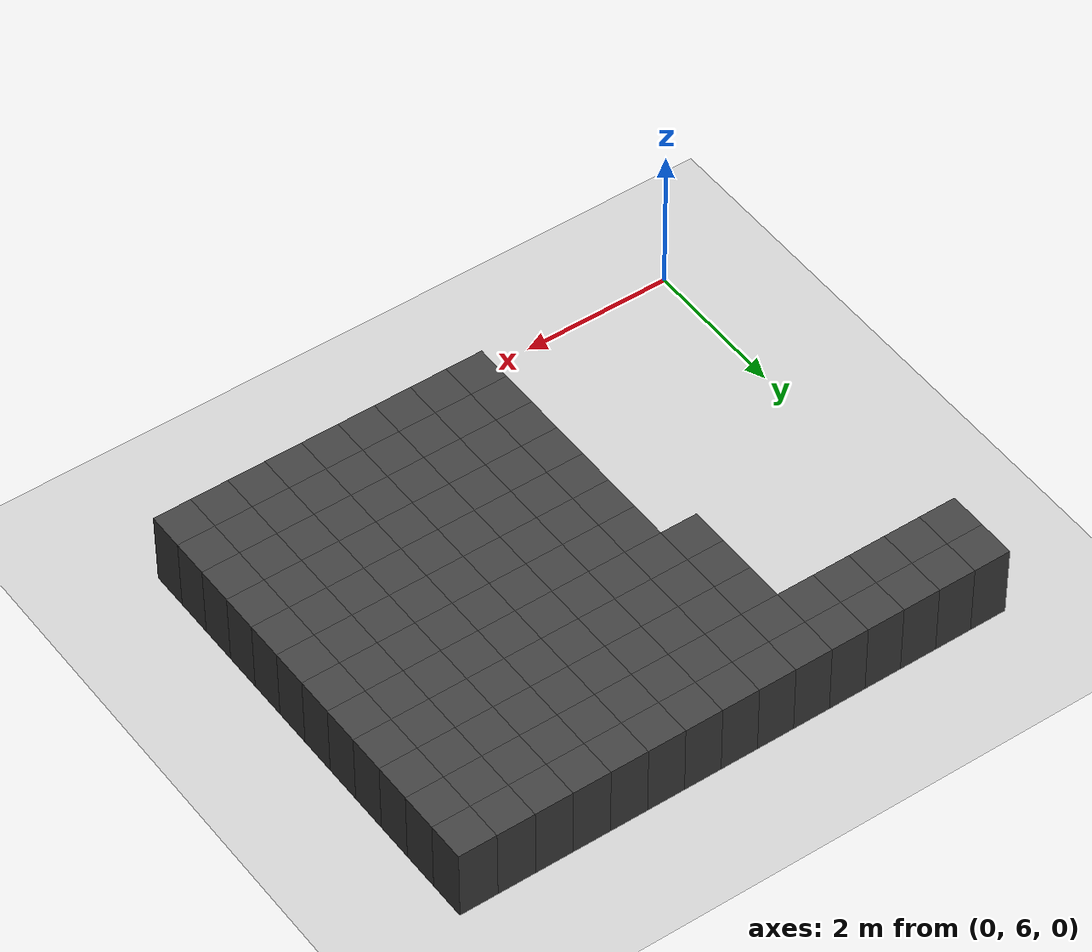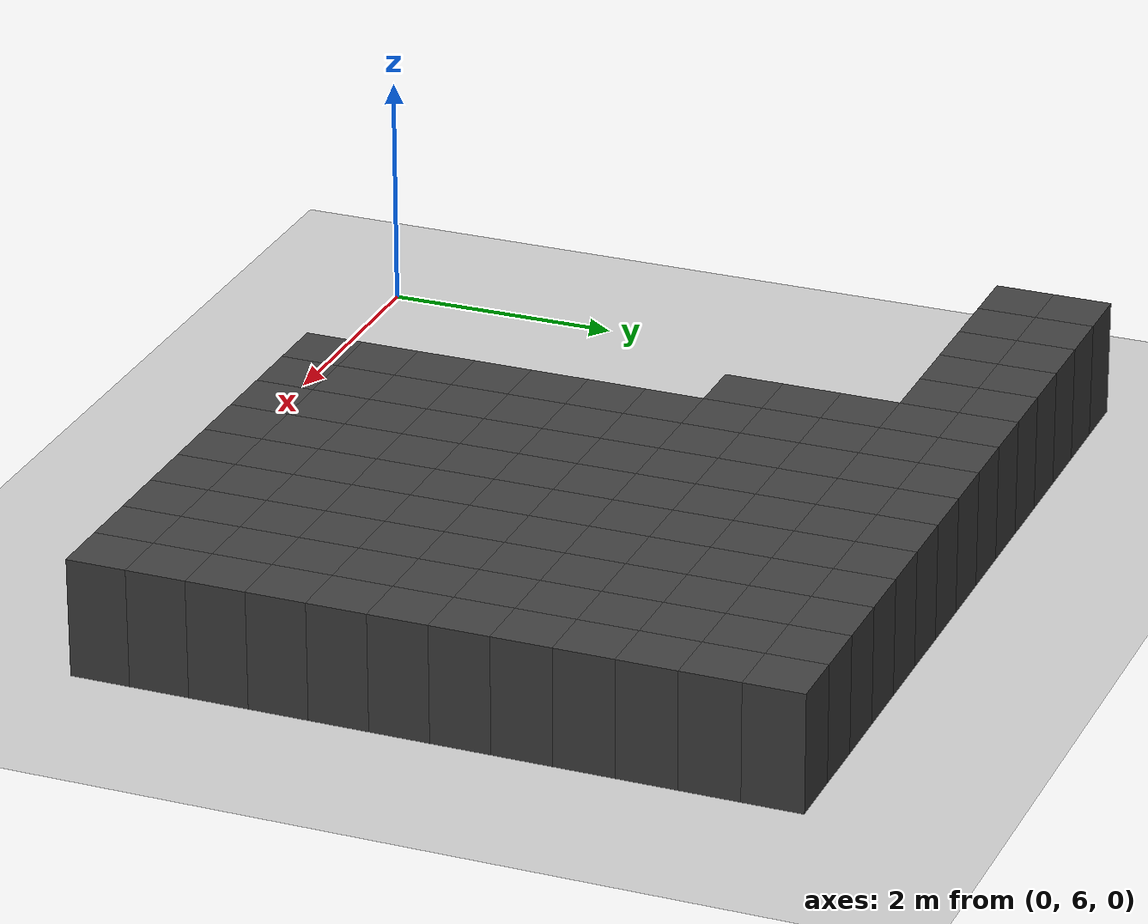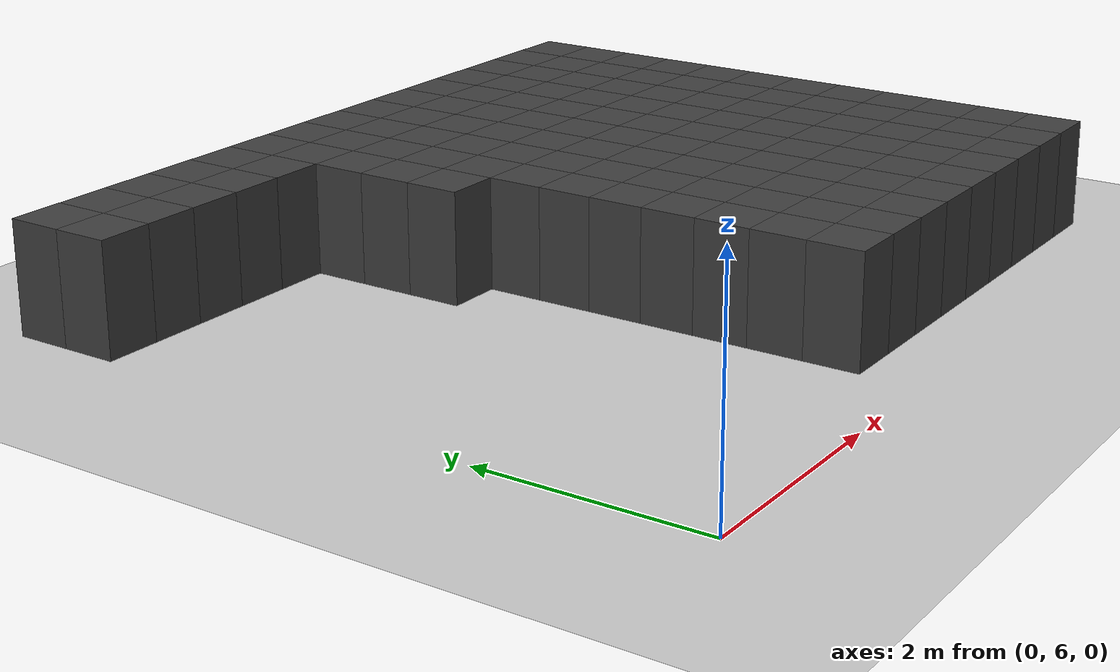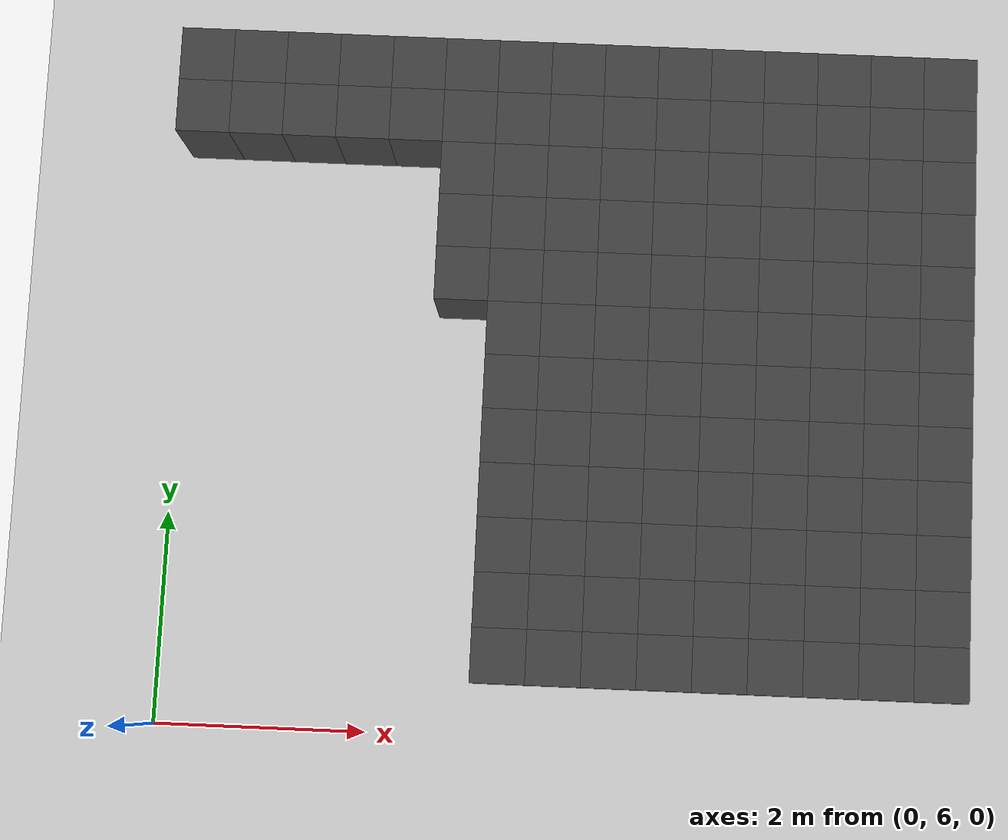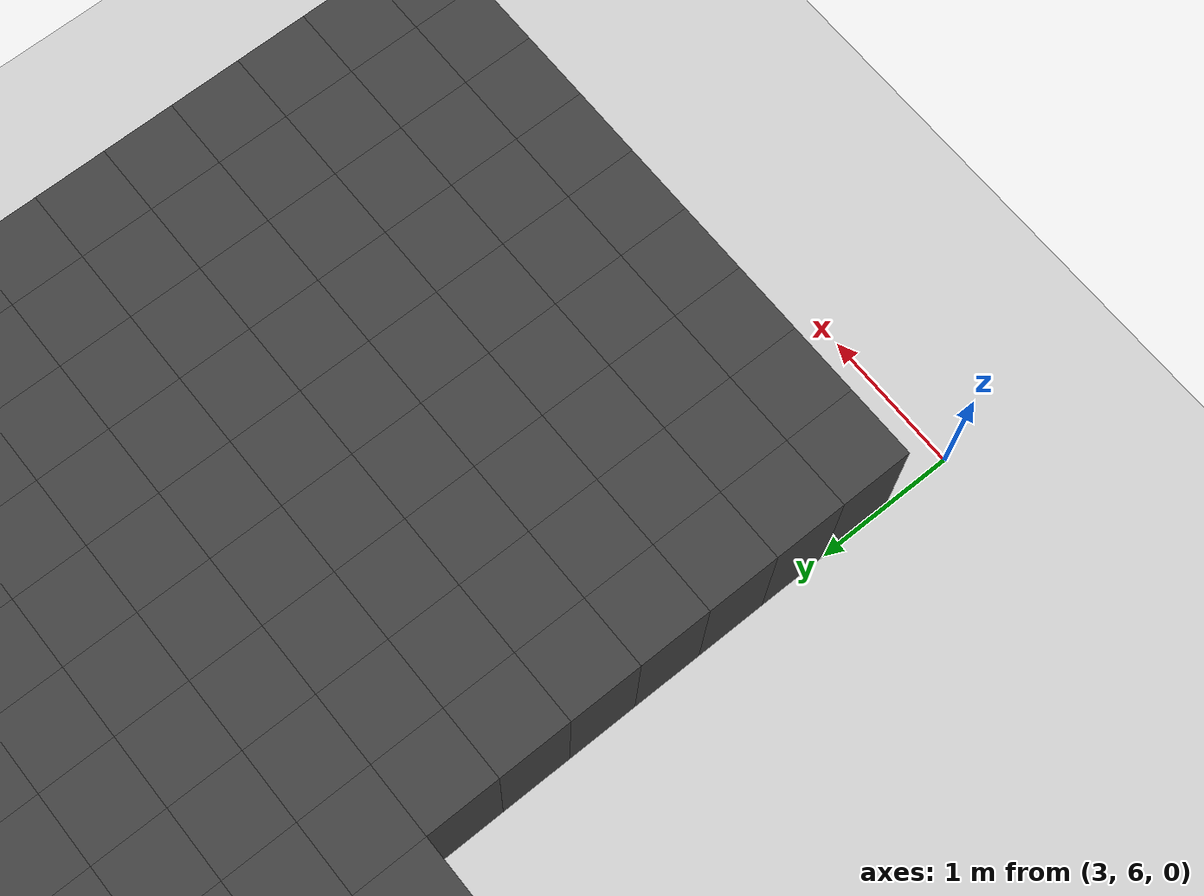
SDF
<sdf version="1.7">
 <world name="map_14888">
  <model name="ground_plane">
   <static>true</static>
   <link name="link">
    <collision name="collision">
     <geometry><plane><normal>0 0 1</normal><size>200 200</size></plane></geometry>
    </collision>
    <visual name="visual">
     <geometry><plane><normal>0 0 1</normal><size>200 200</size></plane></geometry>
     <material><ambient>0.8 0.8 0.8 1</ambient><diffuse>0.8 0.8 0.8 1</diffuse></material>
    </visual>
   </link>
  </model>
  <model name="maze_environment">
   <static>true</static>
   <link name="wall_25">
    <pose>0.250 12.250 0.500 0 0 0</pose>
    <collision name="col"><geometry><box><size>0.5 0.5 1.0</size></box></geometry></collision>
    <visual name="vis">
     <geometry><box><size>0.5 0.5 1.0</size></box></geometry>
     <material><ambient>0.15 0.15 0.15 1</ambient><diffuse>0.25 0.25 0.25 1</diffuse></material>
    </visual>
   </link>
   <link name="wall_26">
    <pose>0.750 12.250 0.500 0 0 0</pose>
    <collision name="col"><geometry><box><size>0.5 0.5 1.0</size></box></geometry></collision>
    <visual name="vis">
     <geometry><box><size>0.5 0.5 1.0</size></box></geometry>
     <material><ambient>0.15 0.15 0.15 1</ambient><diffuse>0.25 0.25 0.25 1</diffuse></material>
    </visual>
   </link>
   <link name="wall_27">
    <pose>1.250 12.250 0.500 0 0 0</pose>
    <collision name="col"><geometry><box><size>0.5 0.5 1.0</size></box></geometry></collision>
    <visual name="vis">
     <geometry><box><size>0.5 0.5 1.0</size></box></geometry>
     <material><ambient>0.15 0.15 0.15 1</ambient><diffuse>0.25 0.25 0.25 1</diffuse></material>
    </visual>
   </link>
   <link name="wall_28">
    <pose>1.750 12.250 0.500 0 0 0</pose>
    <collision name="col"><geometry><box><size>0.5 0.5 1.0</size></box></geometry></collision>
    <visual name="vis">
     <geometry><box><size>0.5 0.5 1.0</size></box></geometry>
     <material><ambient>0.15 0.15 0.15 1</ambient><diffuse>0.25 0.25 0.25 1</diffuse></material>
    </visual>
   </link>
   <link name="wall_29">
    <pose>2.250 12.250 0.500 0 0 0</pose>
    <collision name="col"><geometry><box><size>0.5 0.5 1.0</size></box></geometry></collision>
    <visual name="vis">
     <geometry><box><size>0.5 0.5 1.0</size></box></geometry>
     <material><ambient>0.15 0.15 0.15 1</ambient><diffuse>0.25 0.25 0.25 1</diffuse></material>
    </visual>
   </link>
   <link name="wall_30">
    <pose>2.750 12.250 0.500 0 0 0</pose>
    <collision name="col"><geometry><box><size>0.5 0.5 1.0</size></box></geometry></collision>
    <visual name="vis">
     <geometry><box><size>0.5 0.5 1.0</size></box></geometry>
     <material><ambient>0.15 0.15 0.15 1</ambient><diffuse>0.25 0.25 0.25 1</diffuse></material>
    </visual>
   </link>
   <link name="wall_31">
    <pose>3.250 12.250 0.500 0 0 0</pose>
    <collision name="col"><geometry><box><size>0.5 0.5 1.0</size></box></geometry></collision>
    <visual name="vis">
     <geometry><box><size>0.5 0.5 1.0</size></box></geometry>
     <material><ambient>0.15 0.15 0.15 1</ambient><diffuse>0.25 0.25 0.25 1</diffuse></material>
    </visual>
   </link>
   <link name="wall_32">
    <pose>3.750 12.250 0.500 0 0 0</pose>
    <collision name="col"><geometry><box><size>0.5 0.5 1.0</size></box></geometry></collision>
    <visual name="vis">
     <geometry><box><size>0.5 0.5 1.0</size></box></geometry>
     <material><ambient>0.15 0.15 0.15 1</ambient><diffuse>0.25 0.25 0.25 1</diffuse></material>
    </visual>
   </link>
   <link name="wall_33">
    <pose>4.250 12.250 0.500 0 0 0</pose>
    <collision name="col"><geometry><box><size>0.5 0.5 1.0</size></box></geometry></collision>
    <visual name="vis">
     <geometry><box><size>0.5 0.5 1.0</size></box></geometry>
     <material><ambient>0.15 0.15 0.15 1</ambient><diffuse>0.25 0.25 0.25 1</diffuse></material>
    </visual>
   </link>
   <link name="wall_34">
    <pose>4.750 12.250 0.500 0 0 0</pose>
    <collision name="col"><geometry><box><size>0.5 0.5 1.0</size></box></geometry></collision>
    <visual name="vis">
     <geometry><box><size>0.5 0.5 1.0</size></box></geometry>
     <material><ambient>0.15 0.15 0.15 1</ambient><diffuse>0.25 0.25 0.25 1</diffuse></material>
    </visual>
   </link>
   <link name="wall_35">
    <pose>5.250 12.250 0.500 0 0 0</pose>
    <collision name="col"><geometry><box><size>0.5 0.5 1.0</size></box></geometry></collision>
    <visual name="vis">
     <geometry><box><size>0.5 0.5 1.0</size></box></geometry>
     <material><ambient>0.15 0.15 0.15 1</ambient><diffuse>0.25 0.25 0.25 1</diffuse></material>
    </visual>
   </link>
   <link name="wall_36">
    <pose>5.750 12.250 0.500 0 0 0</pose>
    <collision name="col"><geometry><box><size>0.5 0.5 1.0</size></box></geometry></collision>
    <visual name="vis">
     <geometry><box><size>0.5 0.5 1.0</size></box></geometry>
     <material><ambient>0.15 0.15 0.15 1</ambient><diffuse>0.25 0.25 0.25 1</diffuse></material>
    </visual>
   </link>
   <link name="wall_37">
    <pose>6.250 12.250 0.500 0 0 0</pose>
    <collision name="col"><geometry><box><size>0.5 0.5 1.0</size></box></geometry></collision>
    <visual name="vis">
     <geometry><box><size>0.5 0.5 1.0</size></box></geometry>
     <material><ambient>0.15 0.15 0.15 1</ambient><diffuse>0.25 0.25 0.25 1</diffuse></material>
    </visual>
   </link>
   <link name="wall_38">
    <pose>6.750 12.250 0.500 0 0 0</pose>
    <collision name="col"><geometry><box><size>0.5 0.5 1.0</size></box></geometry></collision>
    <visual name="vis">
     <geometry><box><size>0.5 0.5 1.0</size></box></geometry>
     <material><ambient>0.15 0.15 0.15 1</ambient><diffuse>0.25 0.25 0.25 1</diffuse></material>
    </visual>
   </link>
   <link name="wall_39">
    <pose>7.250 12.250 0.500 0 0 0</pose>
    <collision name="col"><geometry><box><size>0.5 0.5 1.0</size></box></geometry></collision>
    <visual name="vis">
     <geometry><box><size>0.5 0.5 1.0</size></box></geometry>
     <material><ambient>0.15 0.15 0.15 1</ambient><diffuse>0.25 0.25 0.25 1</diffuse></material>
    </visual>
   </link>
   <link name="wall_72">
    <pose>0.250 11.750 0.500 0 0 0</pose>
    <collision name="col"><geometry><box><size>0.5 0.5 1.0</size></box></geometry></collision>
    <visual name="vis">
     <geometry><box><size>0.5 0.5 1.0</size></box></geometry>
     <material><ambient>0.15 0.15 0.15 1</ambient><diffuse>0.25 0.25 0.25 1</diffuse></material>
    </visual>
   </link>
   <link name="wall_73">
    <pose>0.750 11.750 0.500 0 0 0</pose>
    <collision name="col"><geometry><box><size>0.5 0.5 1.0</size></box></geometry></collision>
    <visual name="vis">
     <geometry><box><size>0.5 0.5 1.0</size></box></geometry>
     <material><ambient>0.15 0.15 0.15 1</ambient><diffuse>0.25 0.25 0.25 1</diffuse></material>
    </visual>
   </link>
   <link name="wall_74">
    <pose>1.250 11.750 0.500 0 0 0</pose>
    <collision name="col"><geometry><box><size>0.5 0.5 1.0</size></box></geometry></collision>
    <visual name="vis">
     <geometry><box><size>0.5 0.5 1.0</size></box></geometry>
     <material><ambient>0.15 0.15 0.15 1</ambient><diffuse>0.25 0.25 0.25 1</diffuse></material>
    </visual>
   </link>
   <link name="wall_75">
    <pose>1.750 11.750 0.500 0 0 0</pose>
    <collision name="col"><geometry><box><size>0.5 0.5 1.0</size></box></geometry></collision>
    <visual name="vis">
     <geometry><box><size>0.5 0.5 1.0</size></box></geometry>
     <material><ambient>0.15 0.15 0.15 1</ambient><diffuse>0.25 0.25 0.25 1</diffuse></material>
    </visual>
   </link>
   <link name="wall_76">
    <pose>2.250 11.750 0.500 0 0 0</pose>
    <collision name="col"><geometry><box><size>0.5 0.5 1.0</size></box></geometry></collision>
    <visual name="vis">
     <geometry><box><size>0.5 0.5 1.0</size></box></geometry>
     <material><ambient>0.15 0.15 0.15 1</ambient><diffuse>0.25 0.25 0.25 1</diffuse></material>
    </visual>
   </link>
   <link name="wall_77">
    <pose>2.750 11.750 0.500 0 0 0</pose>
    <collision name="col"><geometry><box><size>0.5 0.5 1.0</size></box></geometry></collision>
    <visual name="vis">
     <geometry><box><size>0.5 0.5 1.0</size></box></geometry>
     <material><ambient>0.15 0.15 0.15 1</ambient><diffuse>0.25 0.25 0.25 1</diffuse></material>
    </visual>
   </link>
   <link name="wall_78">
    <pose>3.250 11.750 0.500 0 0 0</pose>
    <collision name="col"><geometry><box><size>0.5 0.5 1.0</size></box></geometry></collision>
    <visual name="vis">
     <geometry><box><size>0.5 0.5 1.0</size></box></geometry>
     <material><ambient>0.15 0.15 0.15 1</ambient><diffuse>0.25 0.25 0.25 1</diffuse></material>
    </visual>
   </link>
   <link name="wall_79">
    <pose>3.750 11.750 0.500 0 0 0</pose>
    <collision name="col"><geometry><box><size>0.5 0.5 1.0</size></box></geometry></collision>
    <visual name="vis">
     <geometry><box><size>0.5 0.5 1.0</size></box></geometry>
     <material><ambient>0.15 0.15 0.15 1</ambient><diffuse>0.25 0.25 0.25 1</diffuse></material>
    </visual>
   </link>
   <link name="wall_80">
    <pose>4.250 11.750 0.500 0 0 0</pose>
    <collision name="col"><geometry><box><size>0.5 0.5 1.0</size></box></geometry></collision>
    <visual name="vis">
     <geometry><box><size>0.5 0.5 1.0</size></box></geometry>
     <material><ambient>0.15 0.15 0.15 1</ambient><diffuse>0.25 0.25 0.25 1</diffuse></material>
    </visual>
   </link>
   <link name="wall_81">
    <pose>4.750 11.750 0.500 0 0 0</pose>
    <collision name="col"><geometry><box><size>0.5 0.5 1.0</size></box></geometry></collision>
    <visual name="vis">
     <geometry><box><size>0.5 0.5 1.0</size></box></geometry>
     <material><ambient>0.15 0.15 0.15 1</ambient><diffuse>0.25 0.25 0.25 1</diffuse></material>
    </visual>
   </link>
   <link name="wall_82">
    <pose>5.250 11.750 0.500 0 0 0</pose>
    <collision name="col"><geometry><box><size>0.5 0.5 1.0</size></box></geometry></collision>
    <visual name="vis">
     <geometry><box><size>0.5 0.5 1.0</size></box></geometry>
     <material><ambient>0.15 0.15 0.15 1</ambient><diffuse>0.25 0.25 0.25 1</diffuse></material>
    </visual>
   </link>
   <link name="wall_83">
    <pose>5.750 11.750 0.500 0 0 0</pose>
    <collision name="col"><geometry><box><size>0.5 0.5 1.0</size></box></geometry></collision>
    <visual name="vis">
     <geometry><box><size>0.5 0.5 1.0</size></box></geometry>
     <material><ambient>0.15 0.15 0.15 1</ambient><diffuse>0.25 0.25 0.25 1</diffuse></material>
    </visual>
   </link>
   <link name="wall_84">
    <pose>6.250 11.750 0.500 0 0 0</pose>
    <collision name="col"><geometry><box><size>0.5 0.5 1.0</size></box></geometry></collision>
    <visual name="vis">
     <geometry><box><size>0.5 0.5 1.0</size></box></geometry>
     <material><ambient>0.15 0.15 0.15 1</ambient><diffuse>0.25 0.25 0.25 1</diffuse></material>
    </visual>
   </link>
   <link name="wall_85">
    <pose>6.750 11.750 0.500 0 0 0</pose>
    <collision name="col"><geometry><box><size>0.5 0.5 1.0</size></box></geometry></collision>
    <visual name="vis">
     <geometry><box><size>0.5 0.5 1.0</size></box></geometry>
     <material><ambient>0.15 0.15 0.15 1</ambient><diffuse>0.25 0.25 0.25 1</diffuse></material>
    </visual>
   </link>
   <link name="wall_86">
    <pose>7.250 11.750 0.500 0 0 0</pose>
    <collision name="col"><geometry><box><size>0.5 0.5 1.0</size></box></geometry></collision>
    <visual name="vis">
     <geometry><box><size>0.5 0.5 1.0</size></box></geometry>
     <material><ambient>0.15 0.15 0.15 1</ambient><diffuse>0.25 0.25 0.25 1</diffuse></material>
    </visual>
   </link>
   <link name="wall_118">
    <pose>2.750 11.250 0.500 0 0 0</pose>
    <collision name="col"><geometry><box><size>0.5 0.5 1.0</size></box></geometry></collision>
    <visual name="vis">
     <geometry><box><size>0.5 0.5 1.0</size></box></geometry>
     <material><ambient>0.15 0.15 0.15 1</ambient><diffuse>0.25 0.25 0.25 1</diffuse></material>
    </visual>
   </link>
   <link name="wall_119">
    <pose>3.250 11.250 0.500 0 0 0</pose>
    <collision name="col"><geometry><box><size>0.5 0.5 1.0</size></box></geometry></collision>
    <visual name="vis">
     <geometry><box><size>0.5 0.5 1.0</size></box></geometry>
     <material><ambient>0.15 0.15 0.15 1</ambient><diffuse>0.25 0.25 0.25 1</diffuse></material>
    </visual>
   </link>
   <link name="wall_120">
    <pose>3.750 11.250 0.500 0 0 0</pose>
    <collision name="col"><geometry><box><size>0.5 0.5 1.0</size></box></geometry></collision>
    <visual name="vis">
     <geometry><box><size>0.5 0.5 1.0</size></box></geometry>
     <material><ambient>0.15 0.15 0.15 1</ambient><diffuse>0.25 0.25 0.25 1</diffuse></material>
    </visual>
   </link>
   <link name="wall_121">
    <pose>4.250 11.250 0.500 0 0 0</pose>
    <collision name="col"><geometry><box><size>0.5 0.5 1.0</size></box></geometry></collision>
    <visual name="vis">
     <geometry><box><size>0.5 0.5 1.0</size></box></geometry>
     <material><ambient>0.15 0.15 0.15 1</ambient><diffuse>0.25 0.25 0.25 1</diffuse></material>
    </visual>
   </link>
   <link name="wall_122">
    <pose>4.750 11.250 0.500 0 0 0</pose>
    <collision name="col"><geometry><box><size>0.5 0.5 1.0</size></box></geometry></collision>
    <visual name="vis">
     <geometry><box><size>0.5 0.5 1.0</size></box></geometry>
     <material><ambient>0.15 0.15 0.15 1</ambient><diffuse>0.25 0.25 0.25 1</diffuse></material>
    </visual>
   </link>
   <link name="wall_123">
    <pose>5.250 11.250 0.500 0 0 0</pose>
    <collision name="col"><geometry><box><size>0.5 0.5 1.0</size></box></geometry></collision>
    <visual name="vis">
     <geometry><box><size>0.5 0.5 1.0</size></box></geometry>
     <material><ambient>0.15 0.15 0.15 1</ambient><diffuse>0.25 0.25 0.25 1</diffuse></material>
    </visual>
   </link>
   <link name="wall_124">
    <pose>5.750 11.250 0.500 0 0 0</pose>
    <collision name="col"><geometry><box><size>0.5 0.5 1.0</size></box></geometry></collision>
    <visual name="vis">
     <geometry><box><size>0.5 0.5 1.0</size></box></geometry>
     <material><ambient>0.15 0.15 0.15 1</ambient><diffuse>0.25 0.25 0.25 1</diffuse></material>
    </visual>
   </link>
   <link name="wall_125">
    <pose>6.250 11.250 0.500 0 0 0</pose>
    <collision name="col"><geometry><box><size>0.5 0.5 1.0</size></box></geometry></collision>
    <visual name="vis">
     <geometry><box><size>0.5 0.5 1.0</size></box></geometry>
     <material><ambient>0.15 0.15 0.15 1</ambient><diffuse>0.25 0.25 0.25 1</diffuse></material>
    </visual>
   </link>
   <link name="wall_126">
    <pose>6.750 11.250 0.500 0 0 0</pose>
    <collision name="col"><geometry><box><size>0.5 0.5 1.0</size></box></geometry></collision>
    <visual name="vis">
     <geometry><box><size>0.5 0.5 1.0</size></box></geometry>
     <material><ambient>0.15 0.15 0.15 1</ambient><diffuse>0.25 0.25 0.25 1</diffuse></material>
    </visual>
   </link>
   <link name="wall_127">
    <pose>7.250 11.250 0.500 0 0 0</pose>
    <collision name="col"><geometry><box><size>0.5 0.5 1.0</size></box></geometry></collision>
    <visual name="vis">
     <geometry><box><size>0.5 0.5 1.0</size></box></geometry>
     <material><ambient>0.15 0.15 0.15 1</ambient><diffuse>0.25 0.25 0.25 1</diffuse></material>
    </visual>
   </link>
   <link name="wall_159">
    <pose>2.750 10.750 0.500 0 0 0</pose>
    <collision name="col"><geometry><box><size>0.5 0.5 1.0</size></box></geometry></collision>
    <visual name="vis">
     <geometry><box><size>0.5 0.5 1.0</size></box></geometry>
     <material><ambient>0.15 0.15 0.15 1</ambient><diffuse>0.25 0.25 0.25 1</diffuse></material>
    </visual>
   </link>
   <link name="wall_160">
    <pose>3.250 10.750 0.500 0 0 0</pose>
    <collision name="col"><geometry><box><size>0.5 0.5 1.0</size></box></geometry></collision>
    <visual name="vis">
     <geometry><box><size>0.5 0.5 1.0</size></box></geometry>
     <material><ambient>0.15 0.15 0.15 1</ambient><diffuse>0.25 0.25 0.25 1</diffuse></material>
    </visual>
   </link>
   <link name="wall_161">
    <pose>3.750 10.750 0.500 0 0 0</pose>
    <collision name="col"><geometry><box><size>0.5 0.5 1.0</size></box></geometry></collision>
    <visual name="vis">
     <geometry><box><size>0.5 0.5 1.0</size></box></geometry>
     <material><ambient>0.15 0.15 0.15 1</ambient><diffuse>0.25 0.25 0.25 1</diffuse></material>
    </visual>
   </link>
   <link name="wall_162">
    <pose>4.250 10.750 0.500 0 0 0</pose>
    <collision name="col"><geometry><box><size>0.5 0.5 1.0</size></box></geometry></collision>
    <visual name="vis">
     <geometry><box><size>0.5 0.5 1.0</size></box></geometry>
     <material><ambient>0.15 0.15 0.15 1</ambient><diffuse>0.25 0.25 0.25 1</diffuse></material>
    </visual>
   </link>
   <link name="wall_163">
    <pose>4.750 10.750 0.500 0 0 0</pose>
    <collision name="col"><geometry><box><size>0.5 0.5 1.0</size></box></geometry></collision>
    <visual name="vis">
     <geometry><box><size>0.5 0.5 1.0</size></box></geometry>
     <material><ambient>0.15 0.15 0.15 1</ambient><diffuse>0.25 0.25 0.25 1</diffuse></material>
    </visual>
   </link>
   <link name="wall_164">
    <pose>5.250 10.750 0.500 0 0 0</pose>
    <collision name="col"><geometry><box><size>0.5 0.5 1.0</size></box></geometry></collision>
    <visual name="vis">
     <geometry><box><size>0.5 0.5 1.0</size></box></geometry>
     <material><ambient>0.15 0.15 0.15 1</ambient><diffuse>0.25 0.25 0.25 1</diffuse></material>
    </visual>
   </link>
   <link name="wall_165">
    <pose>5.750 10.750 0.500 0 0 0</pose>
    <collision name="col"><geometry><box><size>0.5 0.5 1.0</size></box></geometry></collision>
    <visual name="vis">
     <geometry><box><size>0.5 0.5 1.0</size></box></geometry>
     <material><ambient>0.15 0.15 0.15 1</ambient><diffuse>0.25 0.25 0.25 1</diffuse></material>
    </visual>
   </link>
   <link name="wall_166">
    <pose>6.250 10.750 0.500 0 0 0</pose>
    <collision name="col"><geometry><box><size>0.5 0.5 1.0</size></box></geometry></collision>
    <visual name="vis">
     <geometry><box><size>0.5 0.5 1.0</size></box></geometry>
     <material><ambient>0.15 0.15 0.15 1</ambient><diffuse>0.25 0.25 0.25 1</diffuse></material>
    </visual>
   </link>
   <link name="wall_167">
    <pose>6.750 10.750 0.500 0 0 0</pose>
    <collision name="col"><geometry><box><size>0.5 0.5 1.0</size></box></geometry></collision>
    <visual name="vis">
     <geometry><box><size>0.5 0.5 1.0</size></box></geometry>
     <material><ambient>0.15 0.15 0.15 1</ambient><diffuse>0.25 0.25 0.25 1</diffuse></material>
    </visual>
   </link>
   <link name="wall_168">
    <pose>7.250 10.750 0.500 0 0 0</pose>
    <collision name="col"><geometry><box><size>0.5 0.5 1.0</size></box></geometry></collision>
    <visual name="vis">
     <geometry><box><size>0.5 0.5 1.0</size></box></geometry>
     <material><ambient>0.15 0.15 0.15 1</ambient><diffuse>0.25 0.25 0.25 1</diffuse></material>
    </visual>
   </link>
   <link name="wall_202">
    <pose>2.750 10.250 0.500 0 0 0</pose>
    <collision name="col"><geometry><box><size>0.5 0.5 1.0</size></box></geometry></collision>
    <visual name="vis">
     <geometry><box><size>0.5 0.5 1.0</size></box></geometry>
     <material><ambient>0.15 0.15 0.15 1</ambient><diffuse>0.25 0.25 0.25 1</diffuse></material>
    </visual>
   </link>
   <link name="wall_203">
    <pose>3.250 10.250 0.500 0 0 0</pose>
    <collision name="col"><geometry><box><size>0.5 0.5 1.0</size></box></geometry></collision>
    <visual name="vis">
     <geometry><box><size>0.5 0.5 1.0</size></box></geometry>
     <material><ambient>0.15 0.15 0.15 1</ambient><diffuse>0.25 0.25 0.25 1</diffuse></material>
    </visual>
   </link>
   <link name="wall_204">
    <pose>3.750 10.250 0.500 0 0 0</pose>
    <collision name="col"><geometry><box><size>0.5 0.5 1.0</size></box></geometry></collision>
    <visual name="vis">
     <geometry><box><size>0.5 0.5 1.0</size></box></geometry>
     <material><ambient>0.15 0.15 0.15 1</ambient><diffuse>0.25 0.25 0.25 1</diffuse></material>
    </visual>
   </link>
   <link name="wall_205">
    <pose>4.250 10.250 0.500 0 0 0</pose>
    <collision name="col"><geometry><box><size>0.5 0.5 1.0</size></box></geometry></collision>
    <visual name="vis">
     <geometry><box><size>0.5 0.5 1.0</size></box></geometry>
     <material><ambient>0.15 0.15 0.15 1</ambient><diffuse>0.25 0.25 0.25 1</diffuse></material>
    </visual>
   </link>
   <link name="wall_206">
    <pose>4.750 10.250 0.500 0 0 0</pose>
    <collision name="col"><geometry><box><size>0.5 0.5 1.0</size></box></geometry></collision>
    <visual name="vis">
     <geometry><box><size>0.5 0.5 1.0</size></box></geometry>
     <material><ambient>0.15 0.15 0.15 1</ambient><diffuse>0.25 0.25 0.25 1</diffuse></material>
    </visual>
   </link>
   <link name="wall_207">
    <pose>5.250 10.250 0.500 0 0 0</pose>
    <collision name="col"><geometry><box><size>0.5 0.5 1.0</size></box></geometry></collision>
    <visual name="vis">
     <geometry><box><size>0.5 0.5 1.0</size></box></geometry>
     <material><ambient>0.15 0.15 0.15 1</ambient><diffuse>0.25 0.25 0.25 1</diffuse></material>
    </visual>
   </link>
   <link name="wall_208">
    <pose>5.750 10.250 0.500 0 0 0</pose>
    <collision name="col"><geometry><box><size>0.5 0.5 1.0</size></box></geometry></collision>
    <visual name="vis">
     <geometry><box><size>0.5 0.5 1.0</size></box></geometry>
     <material><ambient>0.15 0.15 0.15 1</ambient><diffuse>0.25 0.25 0.25 1</diffuse></material>
    </visual>
   </link>
   <link name="wall_209">
    <pose>6.250 10.250 0.500 0 0 0</pose>
    <collision name="col"><geometry><box><size>0.5 0.5 1.0</size></box></geometry></collision>
    <visual name="vis">
     <geometry><box><size>0.5 0.5 1.0</size></box></geometry>
     <material><ambient>0.15 0.15 0.15 1</ambient><diffuse>0.25 0.25 0.25 1</diffuse></material>
    </visual>
   </link>
   <link name="wall_210">
    <pose>6.750 10.250 0.500 0 0 0</pose>
    <collision name="col"><geometry><box><size>0.5 0.5 1.0</size></box></geometry></collision>
    <visual name="vis">
     <geometry><box><size>0.5 0.5 1.0</size></box></geometry>
     <material><ambient>0.15 0.15 0.15 1</ambient><diffuse>0.25 0.25 0.25 1</diffuse></material>
    </visual>
   </link>
   <link name="wall_211">
    <pose>7.250 10.250 0.500 0 0 0</pose>
    <collision name="col"><geometry><box><size>0.5 0.5 1.0</size></box></geometry></collision>
    <visual name="vis">
     <geometry><box><size>0.5 0.5 1.0</size></box></geometry>
     <material><ambient>0.15 0.15 0.15 1</ambient><diffuse>0.25 0.25 0.25 1</diffuse></material>
    </visual>
   </link>
   <link name="wall_245">
    <pose>3.250 9.750 0.500 0 0 0</pose>
    <collision name="col"><geometry><box><size>0.5 0.5 1.0</size></box></geometry></collision>
    <visual name="vis">
     <geometry><box><size>0.5 0.5 1.0</size></box></geometry>
     <material><ambient>0.15 0.15 0.15 1</ambient><diffuse>0.25 0.25 0.25 1</diffuse></material>
    </visual>
   </link>
   <link name="wall_246">
    <pose>3.750 9.750 0.500 0 0 0</pose>
    <collision name="col"><geometry><box><size>0.5 0.5 1.0</size></box></geometry></collision>
    <visual name="vis">
     <geometry><box><size>0.5 0.5 1.0</size></box></geometry>
     <material><ambient>0.15 0.15 0.15 1</ambient><diffuse>0.25 0.25 0.25 1</diffuse></material>
    </visual>
   </link>
   <link name="wall_247">
    <pose>4.250 9.750 0.500 0 0 0</pose>
    <collision name="col"><geometry><box><size>0.5 0.5 1.0</size></box></geometry></collision>
    <visual name="vis">
     <geometry><box><size>0.5 0.5 1.0</size></box></geometry>
     <material><ambient>0.15 0.15 0.15 1</ambient><diffuse>0.25 0.25 0.25 1</diffuse></material>
    </visual>
   </link>
   <link name="wall_248">
    <pose>4.750 9.750 0.500 0 0 0</pose>
    <collision name="col"><geometry><box><size>0.5 0.5 1.0</size></box></geometry></collision>
    <visual name="vis">
     <geometry><box><size>0.5 0.5 1.0</size></box></geometry>
     <material><ambient>0.15 0.15 0.15 1</ambient><diffuse>0.25 0.25 0.25 1</diffuse></material>
    </visual>
   </link>
   <link name="wall_249">
    <pose>5.250 9.750 0.500 0 0 0</pose>
    <collision name="col"><geometry><box><size>0.5 0.5 1.0</size></box></geometry></collision>
    <visual name="vis">
     <geometry><box><size>0.5 0.5 1.0</size></box></geometry>
     <material><ambient>0.15 0.15 0.15 1</ambient><diffuse>0.25 0.25 0.25 1</diffuse></material>
    </visual>
   </link>
   <link name="wall_250">
    <pose>5.750 9.750 0.500 0 0 0</pose>
    <collision name="col"><geometry><box><size>0.5 0.5 1.0</size></box></geometry></collision>
    <visual name="vis">
     <geometry><box><size>0.5 0.5 1.0</size></box></geometry>
     <material><ambient>0.15 0.15 0.15 1</ambient><diffuse>0.25 0.25 0.25 1</diffuse></material>
    </visual>
   </link>
   <link name="wall_251">
    <pose>6.250 9.750 0.500 0 0 0</pose>
    <collision name="col"><geometry><box><size>0.5 0.5 1.0</size></box></geometry></collision>
    <visual name="vis">
     <geometry><box><size>0.5 0.5 1.0</size></box></geometry>
     <material><ambient>0.15 0.15 0.15 1</ambient><diffuse>0.25 0.25 0.25 1</diffuse></material>
    </visual>
   </link>
   <link name="wall_252">
    <pose>6.750 9.750 0.500 0 0 0</pose>
    <collision name="col"><geometry><box><size>0.5 0.5 1.0</size></box></geometry></collision>
    <visual name="vis">
     <geometry><box><size>0.5 0.5 1.0</size></box></geometry>
     <material><ambient>0.15 0.15 0.15 1</ambient><diffuse>0.25 0.25 0.25 1</diffuse></material>
    </visual>
   </link>
   <link name="wall_253">
    <pose>7.250 9.750 0.500 0 0 0</pose>
    <collision name="col"><geometry><box><size>0.5 0.5 1.0</size></box></geometry></collision>
    <visual name="vis">
     <geometry><box><size>0.5 0.5 1.0</size></box></geometry>
     <material><ambient>0.15 0.15 0.15 1</ambient><diffuse>0.25 0.25 0.25 1</diffuse></material>
    </visual>
   </link>
   <link name="wall_283">
    <pose>3.250 9.250 0.500 0 0 0</pose>
    <collision name="col"><geometry><box><size>0.5 0.5 1.0</size></box></geometry></collision>
    <visual name="vis">
     <geometry><box><size>0.5 0.5 1.0</size></box></geometry>
     <material><ambient>0.15 0.15 0.15 1</ambient><diffuse>0.25 0.25 0.25 1</diffuse></material>
    </visual>
   </link>
   <link name="wall_284">
    <pose>3.750 9.250 0.500 0 0 0</pose>
    <collision name="col"><geometry><box><size>0.5 0.5 1.0</size></box></geometry></collision>
    <visual name="vis">
     <geometry><box><size>0.5 0.5 1.0</size></box></geometry>
     <material><ambient>0.15 0.15 0.15 1</ambient><diffuse>0.25 0.25 0.25 1</diffuse></material>
    </visual>
   </link>
   <link name="wall_285">
    <pose>4.250 9.250 0.500 0 0 0</pose>
    <collision name="col"><geometry><box><size>0.5 0.5 1.0</size></box></geometry></collision>
    <visual name="vis">
     <geometry><box><size>0.5 0.5 1.0</size></box></geometry>
     <material><ambient>0.15 0.15 0.15 1</ambient><diffuse>0.25 0.25 0.25 1</diffuse></material>
    </visual>
   </link>
   <link name="wall_286">
    <pose>4.750 9.250 0.500 0 0 0</pose>
    <collision name="col"><geometry><box><size>0.5 0.5 1.0</size></box></geometry></collision>
    <visual name="vis">
     <geometry><box><size>0.5 0.5 1.0</size></box></geometry>
     <material><ambient>0.15 0.15 0.15 1</ambient><diffuse>0.25 0.25 0.25 1</diffuse></material>
    </visual>
   </link>
   <link name="wall_287">
    <pose>5.250 9.250 0.500 0 0 0</pose>
    <collision name="col"><geometry><box><size>0.5 0.5 1.0</size></box></geometry></collision>
    <visual name="vis">
     <geometry><box><size>0.5 0.5 1.0</size></box></geometry>
     <material><ambient>0.15 0.15 0.15 1</ambient><diffuse>0.25 0.25 0.25 1</diffuse></material>
    </visual>
   </link>
   <link name="wall_288">
    <pose>5.750 9.250 0.500 0 0 0</pose>
    <collision name="col"><geometry><box><size>0.5 0.5 1.0</size></box></geometry></collision>
    <visual name="vis">
     <geometry><box><size>0.5 0.5 1.0</size></box></geometry>
     <material><ambient>0.15 0.15 0.15 1</ambient><diffuse>0.25 0.25 0.25 1</diffuse></material>
    </visual>
   </link>
   <link name="wall_289">
    <pose>6.250 9.250 0.500 0 0 0</pose>
    <collision name="col"><geometry><box><size>0.5 0.5 1.0</size></box></geometry></collision>
    <visual name="vis">
     <geometry><box><size>0.5 0.5 1.0</size></box></geometry>
     <material><ambient>0.15 0.15 0.15 1</ambient><diffuse>0.25 0.25 0.25 1</diffuse></material>
    </visual>
   </link>
   <link name="wall_290">
    <pose>6.750 9.250 0.500 0 0 0</pose>
    <collision name="col"><geometry><box><size>0.5 0.5 1.0</size></box></geometry></collision>
    <visual name="vis">
     <geometry><box><size>0.5 0.5 1.0</size></box></geometry>
     <material><ambient>0.15 0.15 0.15 1</ambient><diffuse>0.25 0.25 0.25 1</diffuse></material>
    </visual>
   </link>
   <link name="wall_291">
    <pose>7.250 9.250 0.500 0 0 0</pose>
    <collision name="col"><geometry><box><size>0.5 0.5 1.0</size></box></geometry></collision>
    <visual name="vis">
     <geometry><box><size>0.5 0.5 1.0</size></box></geometry>
     <material><ambient>0.15 0.15 0.15 1</ambient><diffuse>0.25 0.25 0.25 1</diffuse></material>
    </visual>
   </link>
   <link name="wall_317">
    <pose>3.250 8.750 0.500 0 0 0</pose>
    <collision name="col"><geometry><box><size>0.5 0.5 1.0</size></box></geometry></collision>
    <visual name="vis">
     <geometry><box><size>0.5 0.5 1.0</size></box></geometry>
     <material><ambient>0.15 0.15 0.15 1</ambient><diffuse>0.25 0.25 0.25 1</diffuse></material>
    </visual>
   </link>
   <link name="wall_318">
    <pose>3.750 8.750 0.500 0 0 0</pose>
    <collision name="col"><geometry><box><size>0.5 0.5 1.0</size></box></geometry></collision>
    <visual name="vis">
     <geometry><box><size>0.5 0.5 1.0</size></box></geometry>
     <material><ambient>0.15 0.15 0.15 1</ambient><diffuse>0.25 0.25 0.25 1</diffuse></material>
    </visual>
   </link>
   <link name="wall_319">
    <pose>4.250 8.750 0.500 0 0 0</pose>
    <collision name="col"><geometry><box><size>0.5 0.5 1.0</size></box></geometry></collision>
    <visual name="vis">
     <geometry><box><size>0.5 0.5 1.0</size></box></geometry>
     <material><ambient>0.15 0.15 0.15 1</ambient><diffuse>0.25 0.25 0.25 1</diffuse></material>
    </visual>
   </link>
   <link name="wall_320">
    <pose>4.750 8.750 0.500 0 0 0</pose>
    <collision name="col"><geometry><box><size>0.5 0.5 1.0</size></box></geometry></collision>
    <visual name="vis">
     <geometry><box><size>0.5 0.5 1.0</size></box></geometry>
     <material><ambient>0.15 0.15 0.15 1</ambient><diffuse>0.25 0.25 0.25 1</diffuse></material>
    </visual>
   </link>
   <link name="wall_321">
    <pose>5.250 8.750 0.500 0 0 0</pose>
    <collision name="col"><geometry><box><size>0.5 0.5 1.0</size></box></geometry></collision>
    <visual name="vis">
     <geometry><box><size>0.5 0.5 1.0</size></box></geometry>
     <material><ambient>0.15 0.15 0.15 1</ambient><diffuse>0.25 0.25 0.25 1</diffuse></material>
    </visual>
   </link>
   <link name="wall_322">
    <pose>5.750 8.750 0.500 0 0 0</pose>
    <collision name="col"><geometry><box><size>0.5 0.5 1.0</size></box></geometry></collision>
    <visual name="vis">
     <geometry><box><size>0.5 0.5 1.0</size></box></geometry>
     <material><ambient>0.15 0.15 0.15 1</ambient><diffuse>0.25 0.25 0.25 1</diffuse></material>
    </visual>
   </link>
   <link name="wall_323">
    <pose>6.250 8.750 0.500 0 0 0</pose>
    <collision name="col"><geometry><box><size>0.5 0.5 1.0</size></box></geometry></collision>
    <visual name="vis">
     <geometry><box><size>0.5 0.5 1.0</size></box></geometry>
     <material><ambient>0.15 0.15 0.15 1</ambient><diffuse>0.25 0.25 0.25 1</diffuse></material>
    </visual>
   </link>
   <link name="wall_324">
    <pose>6.750 8.750 0.500 0 0 0</pose>
    <collision name="col"><geometry><box><size>0.5 0.5 1.0</size></box></geometry></collision>
    <visual name="vis">
     <geometry><box><size>0.5 0.5 1.0</size></box></geometry>
     <material><ambient>0.15 0.15 0.15 1</ambient><diffuse>0.25 0.25 0.25 1</diffuse></material>
    </visual>
   </link>
   <link name="wall_325">
    <pose>7.250 8.750 0.500 0 0 0</pose>
    <collision name="col"><geometry><box><size>0.5 0.5 1.0</size></box></geometry></collision>
    <visual name="vis">
     <geometry><box><size>0.5 0.5 1.0</size></box></geometry>
     <material><ambient>0.15 0.15 0.15 1</ambient><diffuse>0.25 0.25 0.25 1</diffuse></material>
    </visual>
   </link>
   <link name="wall_351">
    <pose>3.250 8.250 0.500 0 0 0</pose>
    <collision name="col"><geometry><box><size>0.5 0.5 1.0</size></box></geometry></collision>
    <visual name="vis">
     <geometry><box><size>0.5 0.5 1.0</size></box></geometry>
     <material><ambient>0.15 0.15 0.15 1</ambient><diffuse>0.25 0.25 0.25 1</diffuse></material>
    </visual>
   </link>
   <link name="wall_352">
    <pose>3.750 8.250 0.500 0 0 0</pose>
    <collision name="col"><geometry><box><size>0.5 0.5 1.0</size></box></geometry></collision>
    <visual name="vis">
     <geometry><box><size>0.5 0.5 1.0</size></box></geometry>
     <material><ambient>0.15 0.15 0.15 1</ambient><diffuse>0.25 0.25 0.25 1</diffuse></material>
    </visual>
   </link>
   <link name="wall_353">
    <pose>4.250 8.250 0.500 0 0 0</pose>
    <collision name="col"><geometry><box><size>0.5 0.5 1.0</size></box></geometry></collision>
    <visual name="vis">
     <geometry><box><size>0.5 0.5 1.0</size></box></geometry>
     <material><ambient>0.15 0.15 0.15 1</ambient><diffuse>0.25 0.25 0.25 1</diffuse></material>
    </visual>
   </link>
   <link name="wall_354">
    <pose>4.750 8.250 0.500 0 0 0</pose>
    <collision name="col"><geometry><box><size>0.5 0.5 1.0</size></box></geometry></collision>
    <visual name="vis">
     <geometry><box><size>0.5 0.5 1.0</size></box></geometry>
     <material><ambient>0.15 0.15 0.15 1</ambient><diffuse>0.25 0.25 0.25 1</diffuse></material>
    </visual>
   </link>
   <link name="wall_355">
    <pose>5.250 8.250 0.500 0 0 0</pose>
    <collision name="col"><geometry><box><size>0.5 0.5 1.0</size></box></geometry></collision>
    <visual name="vis">
     <geometry><box><size>0.5 0.5 1.0</size></box></geometry>
     <material><ambient>0.15 0.15 0.15 1</ambient><diffuse>0.25 0.25 0.25 1</diffuse></material>
    </visual>
   </link>
   <link name="wall_356">
    <pose>5.750 8.250 0.500 0 0 0</pose>
    <collision name="col"><geometry><box><size>0.5 0.5 1.0</size></box></geometry></collision>
    <visual name="vis">
     <geometry><box><size>0.5 0.5 1.0</size></box></geometry>
     <material><ambient>0.15 0.15 0.15 1</ambient><diffuse>0.25 0.25 0.25 1</diffuse></material>
    </visual>
   </link>
   <link name="wall_357">
    <pose>6.250 8.250 0.500 0 0 0</pose>
    <collision name="col"><geometry><box><size>0.5 0.5 1.0</size></box></geometry></collision>
    <visual name="vis">
     <geometry><box><size>0.5 0.5 1.0</size></box></geometry>
     <material><ambient>0.15 0.15 0.15 1</ambient><diffuse>0.25 0.25 0.25 1</diffuse></material>
    </visual>
   </link>
   <link name="wall_358">
    <pose>6.750 8.250 0.500 0 0 0</pose>
    <collision name="col"><geometry><box><size>0.5 0.5 1.0</size></box></geometry></collision>
    <visual name="vis">
     <geometry><box><size>0.5 0.5 1.0</size></box></geometry>
     <material><ambient>0.15 0.15 0.15 1</ambient><diffuse>0.25 0.25 0.25 1</diffuse></material>
    </visual>
   </link>
   <link name="wall_359">
    <pose>7.250 8.250 0.500 0 0 0</pose>
    <collision name="col"><geometry><box><size>0.5 0.5 1.0</size></box></geometry></collision>
    <visual name="vis">
     <geometry><box><size>0.5 0.5 1.0</size></box></geometry>
     <material><ambient>0.15 0.15 0.15 1</ambient><diffuse>0.25 0.25 0.25 1</diffuse></material>
    </visual>
   </link>
   <link name="wall_372">
    <pose>3.250 7.750 0.500 0 0 0</pose>
    <collision name="col"><geometry><box><size>0.5 0.5 1.0</size></box></geometry></collision>
    <visual name="vis">
     <geometry><box><size>0.5 0.5 1.0</size></box></geometry>
     <material><ambient>0.15 0.15 0.15 1</ambient><diffuse>0.25 0.25 0.25 1</diffuse></material>
    </visual>
   </link>
   <link name="wall_373">
    <pose>3.750 7.750 0.500 0 0 0</pose>
    <collision name="col"><geometry><box><size>0.5 0.5 1.0</size></box></geometry></collision>
    <visual name="vis">
     <geometry><box><size>0.5 0.5 1.0</size></box></geometry>
     <material><ambient>0.15 0.15 0.15 1</ambient><diffuse>0.25 0.25 0.25 1</diffuse></material>
    </visual>
   </link>
   <link name="wall_374">
    <pose>4.250 7.750 0.500 0 0 0</pose>
    <collision name="col"><geometry><box><size>0.5 0.5 1.0</size></box></geometry></collision>
    <visual name="vis">
     <geometry><box><size>0.5 0.5 1.0</size></box></geometry>
     <material><ambient>0.15 0.15 0.15 1</ambient><diffuse>0.25 0.25 0.25 1</diffuse></material>
    </visual>
   </link>
   <link name="wall_375">
    <pose>4.750 7.750 0.500 0 0 0</pose>
    <collision name="col"><geometry><box><size>0.5 0.5 1.0</size></box></geometry></collision>
    <visual name="vis">
     <geometry><box><size>0.5 0.5 1.0</size></box></geometry>
     <material><ambient>0.15 0.15 0.15 1</ambient><diffuse>0.25 0.25 0.25 1</diffuse></material>
    </visual>
   </link>
   <link name="wall_376">
    <pose>5.250 7.750 0.500 0 0 0</pose>
    <collision name="col"><geometry><box><size>0.5 0.5 1.0</size></box></geometry></collision>
    <visual name="vis">
     <geometry><box><size>0.5 0.5 1.0</size></box></geometry>
     <material><ambient>0.15 0.15 0.15 1</ambient><diffuse>0.25 0.25 0.25 1</diffuse></material>
    </visual>
   </link>
   <link name="wall_377">
    <pose>5.750 7.750 0.500 0 0 0</pose>
    <collision name="col"><geometry><box><size>0.5 0.5 1.0</size></box></geometry></collision>
    <visual name="vis">
     <geometry><box><size>0.5 0.5 1.0</size></box></geometry>
     <material><ambient>0.15 0.15 0.15 1</ambient><diffuse>0.25 0.25 0.25 1</diffuse></material>
    </visual>
   </link>
   <link name="wall_378">
    <pose>6.250 7.750 0.500 0 0 0</pose>
    <collision name="col"><geometry><box><size>0.5 0.5 1.0</size></box></geometry></collision>
    <visual name="vis">
     <geometry><box><size>0.5 0.5 1.0</size></box></geometry>
     <material><ambient>0.15 0.15 0.15 1</ambient><diffuse>0.25 0.25 0.25 1</diffuse></material>
    </visual>
   </link>
   <link name="wall_379">
    <pose>6.750 7.750 0.500 0 0 0</pose>
    <collision name="col"><geometry><box><size>0.5 0.5 1.0</size></box></geometry></collision>
    <visual name="vis">
     <geometry><box><size>0.5 0.5 1.0</size></box></geometry>
     <material><ambient>0.15 0.15 0.15 1</ambient><diffuse>0.25 0.25 0.25 1</diffuse></material>
    </visual>
   </link>
   <link name="wall_380">
    <pose>7.250 7.750 0.500 0 0 0</pose>
    <collision name="col"><geometry><box><size>0.5 0.5 1.0</size></box></geometry></collision>
    <visual name="vis">
     <geometry><box><size>0.5 0.5 1.0</size></box></geometry>
     <material><ambient>0.15 0.15 0.15 1</ambient><diffuse>0.25 0.25 0.25 1</diffuse></material>
    </visual>
   </link>
   <link name="wall_407">
    <pose>3.250 7.250 0.500 0 0 0</pose>
    <collision name="col"><geometry><box><size>0.5 0.5 1.0</size></box></geometry></collision>
    <visual name="vis">
     <geometry><box><size>0.5 0.5 1.0</size></box></geometry>
     <material><ambient>0.15 0.15 0.15 1</ambient><diffuse>0.25 0.25 0.25 1</diffuse></material>
    </visual>
   </link>
   <link name="wall_408">
    <pose>3.750 7.250 0.500 0 0 0</pose>
    <collision name="col"><geometry><box><size>0.5 0.5 1.0</size></box></geometry></collision>
    <visual name="vis">
     <geometry><box><size>0.5 0.5 1.0</size></box></geometry>
     <material><ambient>0.15 0.15 0.15 1</ambient><diffuse>0.25 0.25 0.25 1</diffuse></material>
    </visual>
   </link>
   <link name="wall_409">
    <pose>4.250 7.250 0.500 0 0 0</pose>
    <collision name="col"><geometry><box><size>0.5 0.5 1.0</size></box></geometry></collision>
    <visual name="vis">
     <geometry><box><size>0.5 0.5 1.0</size></box></geometry>
     <material><ambient>0.15 0.15 0.15 1</ambient><diffuse>0.25 0.25 0.25 1</diffuse></material>
    </visual>
   </link>
   <link name="wall_410">
    <pose>4.750 7.250 0.500 0 0 0</pose>
    <collision name="col"><geometry><box><size>0.5 0.5 1.0</size></box></geometry></collision>
    <visual name="vis">
     <geometry><box><size>0.5 0.5 1.0</size></box></geometry>
     <material><ambient>0.15 0.15 0.15 1</ambient><diffuse>0.25 0.25 0.25 1</diffuse></material>
    </visual>
   </link>
   <link name="wall_411">
    <pose>5.250 7.250 0.500 0 0 0</pose>
    <collision name="col"><geometry><box><size>0.5 0.5 1.0</size></box></geometry></collision>
    <visual name="vis">
     <geometry><box><size>0.5 0.5 1.0</size></box></geometry>
     <material><ambient>0.15 0.15 0.15 1</ambient><diffuse>0.25 0.25 0.25 1</diffuse></material>
    </visual>
   </link>
   <link name="wall_412">
    <pose>5.750 7.250 0.500 0 0 0</pose>
    <collision name="col"><geometry><box><size>0.5 0.5 1.0</size></box></geometry></collision>
    <visual name="vis">
     <geometry><box><size>0.5 0.5 1.0</size></box></geometry>
     <material><ambient>0.15 0.15 0.15 1</ambient><diffuse>0.25 0.25 0.25 1</diffuse></material>
    </visual>
   </link>
   <link name="wall_413">
    <pose>6.250 7.250 0.500 0 0 0</pose>
    <collision name="col"><geometry><box><size>0.5 0.5 1.0</size></box></geometry></collision>
    <visual name="vis">
     <geometry><box><size>0.5 0.5 1.0</size></box></geometry>
     <material><ambient>0.15 0.15 0.15 1</ambient><diffuse>0.25 0.25 0.25 1</diffuse></material>
    </visual>
   </link>
   <link name="wall_414">
    <pose>6.750 7.250 0.500 0 0 0</pose>
    <collision name="col"><geometry><box><size>0.5 0.5 1.0</size></box></geometry></collision>
    <visual name="vis">
     <geometry><box><size>0.5 0.5 1.0</size></box></geometry>
     <material><ambient>0.15 0.15 0.15 1</ambient><diffuse>0.25 0.25 0.25 1</diffuse></material>
    </visual>
   </link>
   <link name="wall_415">
    <pose>7.250 7.250 0.500 0 0 0</pose>
    <collision name="col"><geometry><box><size>0.5 0.5 1.0</size></box></geometry></collision>
    <visual name="vis">
     <geometry><box><size>0.5 0.5 1.0</size></box></geometry>
     <material><ambient>0.15 0.15 0.15 1</ambient><diffuse>0.25 0.25 0.25 1</diffuse></material>
    </visual>
   </link>
   <link name="wall_442">
    <pose>3.250 6.750 0.500 0 0 0</pose>
    <collision name="col"><geometry><box><size>0.5 0.5 1.0</size></box></geometry></collision>
    <visual name="vis">
     <geometry><box><size>0.5 0.5 1.0</size></box></geometry>
     <material><ambient>0.15 0.15 0.15 1</ambient><diffuse>0.25 0.25 0.25 1</diffuse></material>
    </visual>
   </link>
   <link name="wall_443">
    <pose>3.750 6.750 0.500 0 0 0</pose>
    <collision name="col"><geometry><box><size>0.5 0.5 1.0</size></box></geometry></collision>
    <visual name="vis">
     <geometry><box><size>0.5 0.5 1.0</size></box></geometry>
     <material><ambient>0.15 0.15 0.15 1</ambient><diffuse>0.25 0.25 0.25 1</diffuse></material>
    </visual>
   </link>
   <link name="wall_444">
    <pose>4.250 6.750 0.500 0 0 0</pose>
    <collision name="col"><geometry><box><size>0.5 0.5 1.0</size></box></geometry></collision>
    <visual name="vis">
     <geometry><box><size>0.5 0.5 1.0</size></box></geometry>
     <material><ambient>0.15 0.15 0.15 1</ambient><diffuse>0.25 0.25 0.25 1</diffuse></material>
    </visual>
   </link>
   <link name="wall_445">
    <pose>4.750 6.750 0.500 0 0 0</pose>
    <collision name="col"><geometry><box><size>0.5 0.5 1.0</size></box></geometry></collision>
    <visual name="vis">
     <geometry><box><size>0.5 0.5 1.0</size></box></geometry>
     <material><ambient>0.15 0.15 0.15 1</ambient><diffuse>0.25 0.25 0.25 1</diffuse></material>
    </visual>
   </link>
   <link name="wall_446">
    <pose>5.250 6.750 0.500 0 0 0</pose>
    <collision name="col"><geometry><box><size>0.5 0.5 1.0</size></box></geometry></collision>
    <visual name="vis">
     <geometry><box><size>0.5 0.5 1.0</size></box></geometry>
     <material><ambient>0.15 0.15 0.15 1</ambient><diffuse>0.25 0.25 0.25 1</diffuse></material>
    </visual>
   </link>
   <link name="wall_447">
    <pose>5.750 6.750 0.500 0 0 0</pose>
    <collision name="col"><geometry><box><size>0.5 0.5 1.0</size></box></geometry></collision>
    <visual name="vis">
     <geometry><box><size>0.5 0.5 1.0</size></box></geometry>
     <material><ambient>0.15 0.15 0.15 1</ambient><diffuse>0.25 0.25 0.25 1</diffuse></material>
    </visual>
   </link>
   <link name="wall_448">
    <pose>6.250 6.750 0.500 0 0 0</pose>
    <collision name="col"><geometry><box><size>0.5 0.5 1.0</size></box></geometry></collision>
    <visual name="vis">
     <geometry><box><size>0.5 0.5 1.0</size></box></geometry>
     <material><ambient>0.15 0.15 0.15 1</ambient><diffuse>0.25 0.25 0.25 1</diffuse></material>
    </visual>
   </link>
   <link name="wall_449">
    <pose>6.750 6.750 0.500 0 0 0</pose>
    <collision name="col"><geometry><box><size>0.5 0.5 1.0</size></box></geometry></collision>
    <visual name="vis">
     <geometry><box><size>0.5 0.5 1.0</size></box></geometry>
     <material><ambient>0.15 0.15 0.15 1</ambient><diffuse>0.25 0.25 0.25 1</diffuse></material>
    </visual>
   </link>
   <link name="wall_450">
    <pose>7.250 6.750 0.500 0 0 0</pose>
    <collision name="col"><geometry><box><size>0.5 0.5 1.0</size></box></geometry></collision>
    <visual name="vis">
     <geometry><box><size>0.5 0.5 1.0</size></box></geometry>
     <material><ambient>0.15 0.15 0.15 1</ambient><diffuse>0.25 0.25 0.25 1</diffuse></material>
    </visual>
   </link>
  </model>
 </world>
</sdf>
